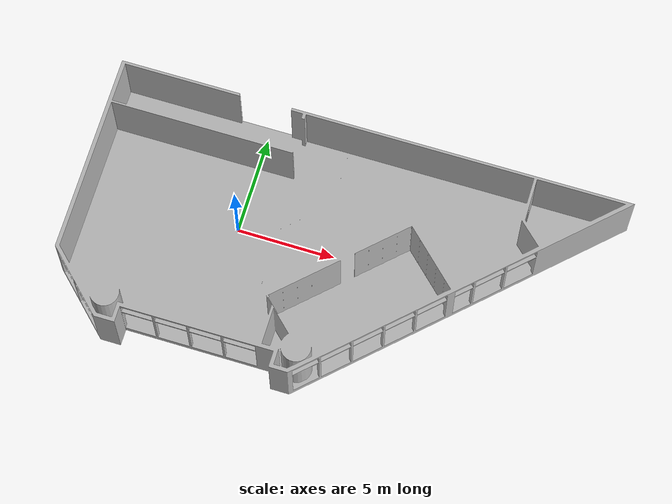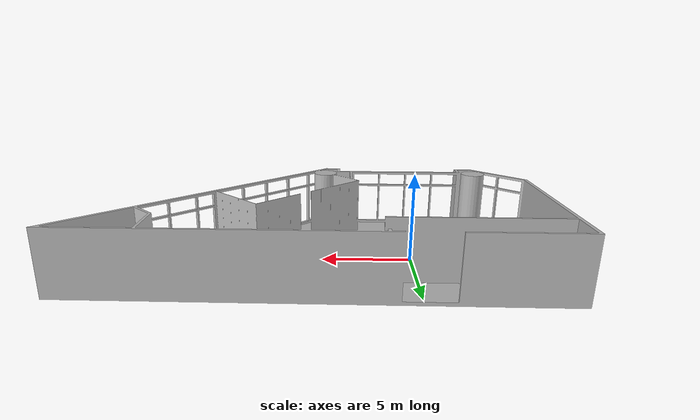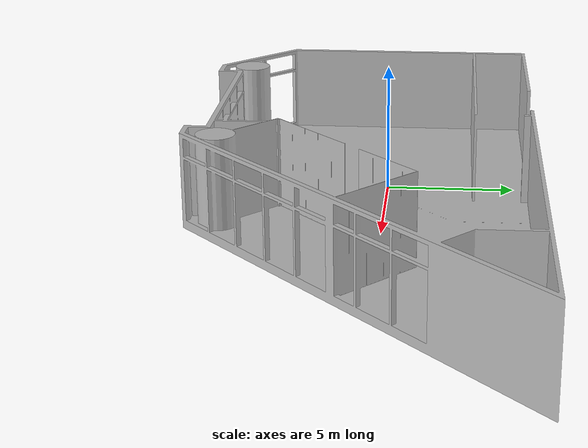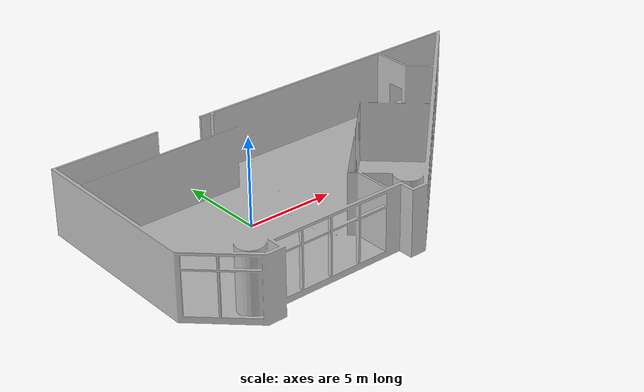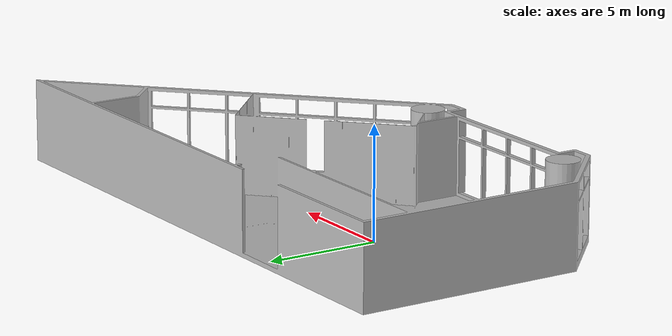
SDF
<?xml version="1.0"?>
<sdf version="1.5">

  <model name="kolvn_office_base">
    <static>true</static>
    <link name="body">

      <visual name="visual">
        <geometry>
          <mesh>
            <uri>model://kolvn_office_base/blender_model/kolvn_office_base_noglass.dae</uri>
          </mesh>
        </geometry>
      </visual>

      <collision name="collision">
        <geometry>
          <mesh>
            <uri>model://kolvn_office_base/blender_model/kolvn_office_base_collision.stl</uri>
          </mesh>
        </geometry>
        <surface>
          <friction>
            <ode>
            </ode>
          </friction>

        </surface>
      </collision>
    </link>
  </model>

</sdf>
